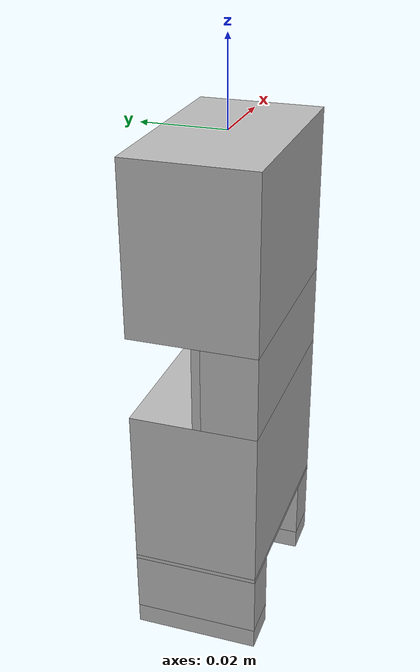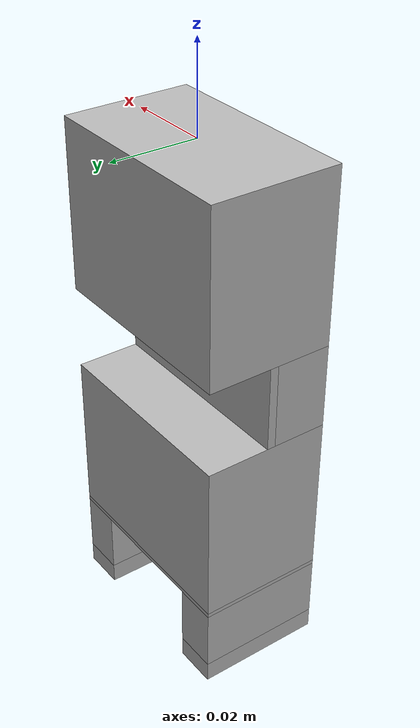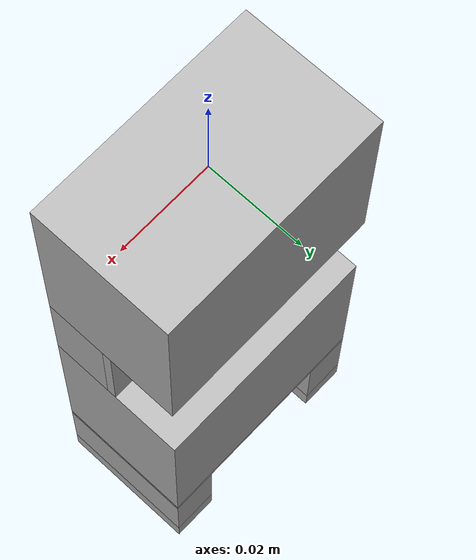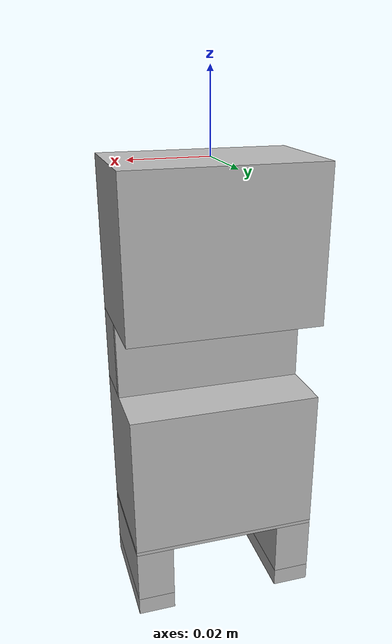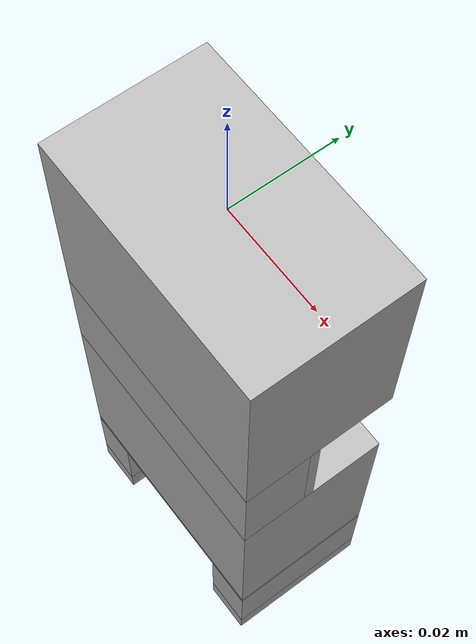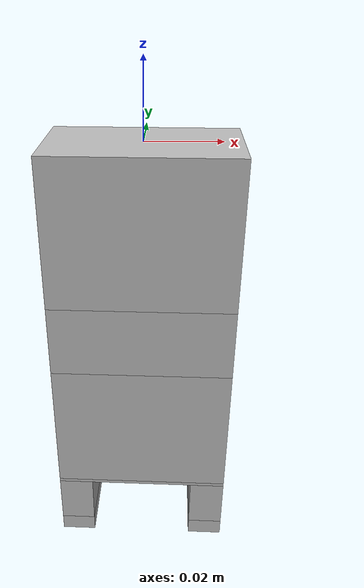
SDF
<?xml version="1.0"?>
<sdf version="1.7">
<world name="w">
<model name="moving_puzzle">
<link name="base_link">
	<inertial>
		<mass>1.0</mass>
		<inertia>
			<ixx>1.0</ixx><ixy>0.0</ixy><ixz>0</ixz>
			<iyy>1.0</iyy><iyz>0.0</iyz><izz>1.0</izz>
		</inertia>
	</inertial>
	<visual name="b1">
		<pose>0.0 0.0 -0.02 0.0 0.0 0.0</pose>
		<geometry>
			<box><size>0.05 0.03 0.04</size></box>
                </geometry>
	</visual>
	<collision name="b1">
		<pose>0.0 0.0 -0.02 0.0 0.0 0.0</pose>
		<geometry>
			<box><size>0.05 0.03 0.04</size></box>
		</geometry>
		<drake:proximity_properties>
			<drake:mu_static>0.0</drake:mu_static>
			<drake:mu_dynamic>0.0</drake:mu_dynamic>
		</drake:proximity_properties>
	</collision>
	<visual name="b2">
		<pose>0.0 -0.0085 -0.05 0.0 0.0 0.0</pose>
		<geometry>
			<box><size>0.05 0.013 0.02</size></box>
                </geometry>
	</visual>
	<collision name="b2">
		<pose>0.0 -0.0085 -0.05 0.0 0.0 0.0</pose>
		<geometry>
			<box><size>0.05 0.013 0.02</size></box>
		</geometry>
		<drake:proximity_properties>
			<drake:mu_static>0.0</drake:mu_static>
			<drake:mu_dynamic>0.0</drake:mu_dynamic>
		</drake:proximity_properties>
        </collision>

        <visual name="b2_inside">
		<pose>0.0 -0.001 -0.05 0.0 0.0 0.0</pose>
		<geometry>
			<box><size>0.05 0.002 0.02</size></box>
                </geometry>
	</visual>
	<collision name="b2_inside">
		<pose>0.0 -0.001 -0.05 0.0 0.0 0.0</pose>
		<geometry>
			<box><size>0.05 0.002 0.02</size></box>
		</geometry>
		<drake:proximity_properties>
			<drake:mu_static>0.0</drake:mu_static>
			<drake:mu_dynamic>0.0</drake:mu_dynamic>
		</drake:proximity_properties>
	</collision>

	<visual name="b3">
		<pose>0.0 0.0 -0.0795 0.0 0.0 0.0</pose>
		<geometry>
			<box><size>0.05 0.03 0.039</size></box>
                </geometry>
       	</visual>
	<collision name="b3">
		<pose>0.0 0.0 -0.0795 0.0 0.0 0.0</pose>
		<geometry>
			<box><size>0.05 0.03 0.039</size></box>
		</geometry>
		<drake:proximity_properties>
			<drake:mu_static>0.0</drake:mu_static>
			<drake:mu_dynamic>0.0</drake:mu_dynamic>
		</drake:proximity_properties>
        </collision>
        <visual name="b3_bottom">
		<pose>0.0 0.0 -0.0995 0.0 0.0 0.0</pose>
		<geometry>
			<box><size>0.05 0.03 0.001</size></box>
                </geometry>
       	</visual>
	<collision name="b3_bottom">
		<pose>0.0 0.0 -0.0995 0.0 0.0 0.0</pose>
		<geometry>
			<box><size>0.05 0.03 0.001</size></box>
		</geometry>
		<drake:proximity_properties>
			<drake:mu_static>0.0</drake:mu_static>
			<drake:mu_dynamic>0.0</drake:mu_dynamic>
		</drake:proximity_properties>
	</collision>

	<visual name="b4_top">
		<pose>0.02 0.0 -0.1075 0.0 0.0 0.0</pose>
		<geometry>
			<box><size>0.01 0.03 0.015</size></box>
                </geometry>
       	</visual>
	<collision name="b4_top">
		<pose>0.02 0.0 -0.1075 0.0 0.0 0.0</pose>
		<geometry>
			<box><size>0.01 0.03 0.015</size></box>
		</geometry>
		<drake:proximity_properties>
			<drake:mu_static>0.0</drake:mu_static>
			<drake:mu_dynamic>0.0</drake:mu_dynamic>
		</drake:proximity_properties>
        </collision>
        <visual name="b4_bottom">
		<pose>0.02 0.0 -0.1175 0.0 0.0 0.0</pose>
		<geometry>
			<box><size>0.01 0.03 0.005</size></box>
                </geometry>
       	</visual>
	<collision name="b4_bottom">
		<pose>0.02 0.0 -0.1175 0.0 0.0 0.0</pose>
		<geometry>
			<box><size>0.01 0.03 0.005</size></box>
		</geometry>
		<drake:proximity_properties>
			<drake:mu_static>0.0</drake:mu_static>
			<drake:mu_dynamic>0.0</drake:mu_dynamic>
		</drake:proximity_properties>
	</collision>

	<visual name="b5_top">
		<pose>-0.02 0.0 -0.1075 0.0 0.0 0.0</pose>
		<geometry>
			<box><size>0.01 0.03 0.015</size></box>
                </geometry>
       	</visual>
	<collision name="b5_top">
		<pose>-0.02 0.0 -0.1075 0.0 0.0 0.0</pose>
		<geometry>
			<box><size>0.01 0.03 0.015</size></box>
		</geometry>
		<drake:proximity_properties>
			<drake:mu_static>0.0</drake:mu_static>
			<drake:mu_dynamic>0.0</drake:mu_dynamic>
		</drake:proximity_properties>
        </collision>
        <visual name="b5_bottom">
		<pose>-0.02 0.0 -0.1175 0.0 0.0 0.0</pose>
		<geometry>
			<box><size>0.01 0.03 0.005</size></box>
                </geometry>
       	</visual>
	<collision name="b5_bottom">
		<pose>-0.02 0.0 -0.1175 0.0 0.0 0.0</pose>
		<geometry>
			<box><size>0.01 0.03 0.005</size></box>
		</geometry>
		<drake:proximity_properties>
			<drake:mu_static>0.0</drake:mu_static>
			<drake:mu_dynamic>0.0</drake:mu_dynamic>
		</drake:proximity_properties>
	</collision>

</link>
</model>
</world>
</sdf>
